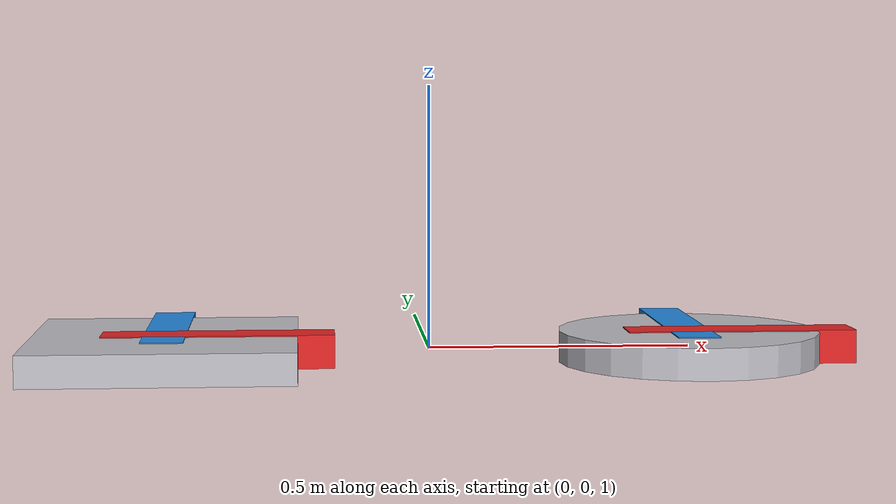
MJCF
<mujoco model="sensor_orientation_sanity">
  <option gravity="0 0 0"/>

  <asset>
    <texture type="2d" name="grid" builtin="checker" rgb1=".15 .15 .15" rgb2=".25 .25 .25" width="300" height="300"/>
    <material name="grid" texture="grid" texrepeat="4 4" reflectance=".1"/>
  </asset>

  <worldbody>
    <light pos="0 0 3" diffuse="1 1 1"/>
    <geom type="plane" size="2 2 0.1" material="grid"/>

    <body name="shoulder_shape" pos="-0.5 0 1">
      <joint name="shoulder_ball" type="ball"/>
      <geom type="box" size="0.25 0.25 0.03" rgba="0.75 0.75 0.78 1"/>
      <geom type="box" size="0.22 0.04 0.032" pos="0.1 0 0" rgba="0.9 0.15 0.15 1"/>
      <geom type="box" size="0.04 0.22 0.032" pos="0 0.1 0" rgba="0.15 0.55 0.9 1"/>
    </body>

    <body name="elbow_shape" pos="0.5 0 1">
      <joint name="elbow_ball" type="ball"/>
      <geom type="cylinder" size="0.25 0.03" rgba="0.75 0.75 0.78 1"/>
      <geom type="box" size="0.22 0.04 0.032" pos="0.1 0 0" rgba="0.9 0.15 0.15 1"/>
      <geom type="box" size="0.04 0.22 0.032" pos="0 0.1 0" rgba="0.15 0.55 0.9 1"/>
    </body>
  </worldbody>
</mujoco>
